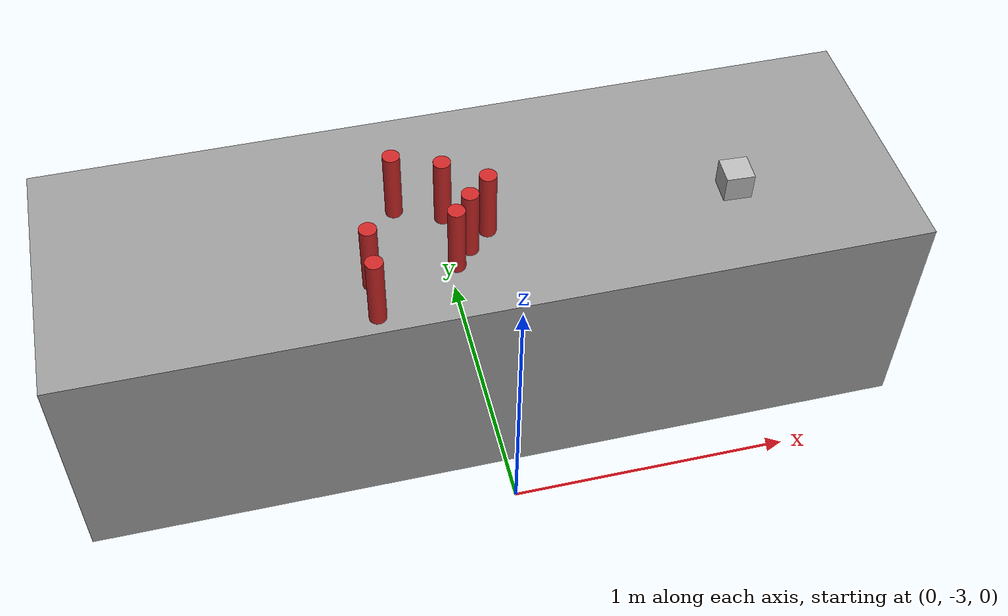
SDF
<sdf version="1.7">
 <world name="default">
  <model name="ground_plane">
   <static>1</static>
   <link name="link_ground_plane">
    <collision name="collision">
     <geometry><plane><normal>0 0 1</normal><size>10 10</size></plane></geometry>
    </collision>
   </link>
  </model>
  <model name="pipette_clone_2">
   <link name="link">
    <inertial>
     <mass>1</mass>
     <inertia><ixx>0.145833</ixx><ixy>0</ixy><ixz>0</ixz><iyy>0.145833</iyy><iyz>0</iyz><izz>0.125</izz></inertia>
    </inertial>
    <visual name="visual">
     <geometry><cylinder><radius>0.0297413</radius><length>0.26554</length></cylinder></geometry>
     <material>
      <script><name>Gazebo/Red</name><uri>file://media/materials/scripts/gazebo.material</uri></script>
      <shader type="pixel"><normal_map>__default__</normal_map></shader>
      <ambient>1 0 0 1</ambient>
      <diffuse>1 0 0 1</diffuse>
      <specular>0.1 0.1 0.1 1</specular>
      <emissive>0 0 0 1</emissive>
     </material>
    </visual>
    <collision name="collision">
     <geometry><cylinder><radius>0.029741</radius><length>0.26554</length></cylinder></geometry>
     <surface>
      <friction>
       <ode><mu>1</mu><mu2>1</mu2><fdir1>0 0 0</fdir1><slip1>0</slip1><slip2>0</slip2></ode>
       <torsional>
        <coefficient>1</coefficient>
        <patch_radius>0</patch_radius>
        <surface_radius>0</surface_radius>
        <use_patch_radius>1</use_patch_radius>
        <ode><slip>0</slip></ode>
       </torsional>
      </friction>
      <bounce><restitution_coefficient>0</restitution_coefficient><threshold>1e+06</threshold></bounce>
      <contact>
       <collide_without_contact>0</collide_without_contact>
       <collide_without_contact_bitmask>1</collide_without_contact_bitmask>
       <collide_bitmask>1</collide_bitmask>
       <ode>
        <soft_cfm>0</soft_cfm>
        <soft_erp>0.2</soft_erp>
        <kp>1e+13</kp>
        <kd>1</kd>
        <max_vel>0.01</max_vel>
        <min_depth>0</min_depth>
       </ode>
       <bullet>
        <split_impulse>1</split_impulse>
        <split_impulse_penetration_threshold>-0.01</split_impulse_penetration_threshold>
        <soft_cfm>0</soft_cfm>
        <soft_erp>0.2</soft_erp>
        <kp>1e+13</kp>
        <kd>1</kd>
       </bullet>
      </contact>
     </surface>
    </collision>
   </link>
   <static>0</static>
   <pose>-0.402533 -2.58547 0.915297 -6e-05 8.7e-05 -3e-05</pose>
  </model>
  <model name="pipette_clone_3">
   <link name="link">
    <inertial>
     <mass>1</mass>
     <inertia><ixx>0.145833</ixx><ixy>0</ixy><ixz>0</ixz><iyy>0.145833</iyy><iyz>0</iyz><izz>0.125</izz></inertia>
    </inertial>
    <visual name="visual">
     <geometry><cylinder><radius>0.0297413</radius><length>0.26554</length></cylinder></geometry>
     <material>
      <script><name>Gazebo/Red</name><uri>file://media/materials/scripts/gazebo.material</uri></script>
      <shader type="pixel"><normal_map>__default__</normal_map></shader>
      <ambient>1 0 0 1</ambient>
      <diffuse>1 0 0 1</diffuse>
      <specular>0.1 0.1 0.1 1</specular>
      <emissive>0 0 0 1</emissive>
     </material>
    </visual>
    <collision name="collision">
     <geometry><cylinder><radius>0.029741</radius><length>0.26554</length></cylinder></geometry>
     <surface>
      <friction>
       <ode><mu>1</mu><mu2>1</mu2><fdir1>0 0 0</fdir1><slip1>0</slip1><slip2>0</slip2></ode>
       <torsional>
        <coefficient>1</coefficient>
        <patch_radius>0</patch_radius>
        <surface_radius>0</surface_radius>
        <use_patch_radius>1</use_patch_radius>
        <ode><slip>0</slip></ode>
       </torsional>
      </friction>
      <bounce><restitution_coefficient>0</restitution_coefficient><threshold>1e+06</threshold></bounce>
      <contact>
       <collide_without_contact>0</collide_without_contact>
       <collide_without_contact_bitmask>1</collide_without_contact_bitmask>
       <collide_bitmask>1</collide_bitmask>
       <ode>
        <soft_cfm>0</soft_cfm>
        <soft_erp>0.2</soft_erp>
        <kp>1e+13</kp>
        <kd>1</kd>
        <max_vel>0.01</max_vel>
        <min_depth>0</min_depth>
       </ode>
       <bullet>
        <split_impulse>1</split_impulse>
        <split_impulse_penetration_threshold>-0.01</split_impulse_penetration_threshold>
        <soft_cfm>0</soft_cfm>
        <soft_erp>0.2</soft_erp>
        <kp>1e+13</kp>
        <kd>1</kd>
       </bullet>
      </contact>
     </surface>
    </collision>
   </link>
   <static>0</static>
   <pose>-0.408695 -2.72846 0.915309 -5.9e-05 9e-05 -3e-05</pose>
  </model>
  <model name="pipette_clone_5">
   <link name="link">
    <inertial>
     <mass>1</mass>
     <inertia><ixx>0.145833</ixx><ixy>0</ixy><ixz>0</ixz><iyy>0.145833</iyy><iyz>0</iyz><izz>0.125</izz></inertia>
    </inertial>
    <visual name="visual">
     <geometry><cylinder><radius>0.0297413</radius><length>0.26554</length></cylinder></geometry>
     <material>
      <script><name>Gazebo/Red</name><uri>file://media/materials/scripts/gazebo.material</uri></script>
      <shader type="pixel"><normal_map>__default__</normal_map></shader>
      <ambient>1 0 0 1</ambient>
      <diffuse>1 0 0 1</diffuse>
      <specular>0.1 0.1 0.1 1</specular>
      <emissive>0 0 0 1</emissive>
     </material>
    </visual>
    <collision name="collision">
     <geometry><cylinder><radius>0.029741</radius><length>0.26554</length></cylinder></geometry>
     <surface>
      <friction>
       <ode><mu>1</mu><mu2>1</mu2><fdir1>0 0 0</fdir1><slip1>0</slip1><slip2>0</slip2></ode>
       <torsional>
        <coefficient>1</coefficient>
        <patch_radius>0</patch_radius>
        <surface_radius>0</surface_radius>
        <use_patch_radius>1</use_patch_radius>
        <ode><slip>0</slip></ode>
       </torsional>
      </friction>
      <bounce><restitution_coefficient>0</restitution_coefficient><threshold>1e+06</threshold></bounce>
      <contact>
       <collide_without_contact>0</collide_without_contact>
       <collide_without_contact_bitmask>1</collide_without_contact_bitmask>
       <collide_bitmask>1</collide_bitmask>
       <ode>
        <soft_cfm>0</soft_cfm>
        <soft_erp>0.2</soft_erp>
        <kp>1e+13</kp>
        <kd>1</kd>
        <max_vel>0.01</max_vel>
        <min_depth>0</min_depth>
       </ode>
       <bullet>
        <split_impulse>1</split_impulse>
        <split_impulse_penetration_threshold>-0.01</split_impulse_penetration_threshold>
        <soft_cfm>0</soft_cfm>
        <soft_erp>0.2</soft_erp>
        <kp>1e+13</kp>
        <kd>1</kd>
       </bullet>
      </contact>
     </surface>
    </collision>
   </link>
   <static>0</static>
   <pose>-0.051805 -2.5069 0.915268 -0.000308 0.000342 -3.1e-05</pose>
  </model>
  <model name="pipette_clone_6">
   <link name="link">
    <inertial>
     <mass>1</mass>
     <inertia><ixx>0.145833</ixx><ixy>0</ixy><ixz>0</ixz><iyy>0.145833</iyy><iyz>0</iyz><izz>0.125</izz></inertia>
    </inertial>
    <visual name="visual">
     <geometry><cylinder><radius>0.0297413</radius><length>0.26554</length></cylinder></geometry>
     <material>
      <script><name>Gazebo/Red</name><uri>file://media/materials/scripts/gazebo.material</uri></script>
      <shader type="pixel"><normal_map>__default__</normal_map></shader>
      <ambient>1 0 0 1</ambient>
      <diffuse>1 0 0 1</diffuse>
      <specular>0.1 0.1 0.1 1</specular>
      <emissive>0 0 0 1</emissive>
     </material>
    </visual>
    <collision name="collision">
     <geometry><cylinder><radius>0.029741</radius><length>0.26554</length></cylinder></geometry>
     <surface>
      <friction>
       <ode><mu>1</mu><mu2>1</mu2><fdir1>0 0 0</fdir1><slip1>0</slip1><slip2>0</slip2></ode>
       <torsional>
        <coefficient>1</coefficient>
        <patch_radius>0</patch_radius>
        <surface_radius>0</surface_radius>
        <use_patch_radius>1</use_patch_radius>
        <ode><slip>0</slip></ode>
       </torsional>
      </friction>
      <bounce><restitution_coefficient>0</restitution_coefficient><threshold>1e+06</threshold></bounce>
      <contact>
       <collide_without_contact>0</collide_without_contact>
       <collide_without_contact_bitmask>1</collide_without_contact_bitmask>
       <collide_bitmask>1</collide_bitmask>
       <ode>
        <soft_cfm>0</soft_cfm>
        <soft_erp>0.2</soft_erp>
        <kp>1e+13</kp>
        <kd>1</kd>
        <max_vel>0.01</max_vel>
        <min_depth>0</min_depth>
       </ode>
       <bullet>
        <split_impulse>1</split_impulse>
        <split_impulse_penetration_threshold>-0.01</split_impulse_penetration_threshold>
        <soft_cfm>0</soft_cfm>
        <soft_erp>0.2</soft_erp>
        <kp>1e+13</kp>
        <kd>1</kd>
       </bullet>
      </contact>
     </surface>
    </collision>
   </link>
   <static>0</static>
   <pose>-0.111287 -2.57041 0.915276 -5.9e-05 8.7e-05 -3e-05</pose>
  </model>
  <model name="pipette_clone_7">
   <link name="link">
    <inertial>
     <mass>1</mass>
     <inertia><ixx>0.145833</ixx><ixy>0</ixy><ixz>0</ixz><iyy>0.145833</iyy><iyz>0</iyz><izz>0.125</izz></inertia>
    </inertial>
    <visual name="visual">
     <geometry><cylinder><radius>0.0297413</radius><length>0.26554</length></cylinder></geometry>
     <material>
      <script><name>Gazebo/Red</name><uri>file://media/materials/scripts/gazebo.material</uri></script>
      <shader type="pixel"><normal_map>__default__</normal_map></shader>
      <ambient>1 0 0 1</ambient>
      <diffuse>1 0 0 1</diffuse>
      <specular>0.1 0.1 0.1 1</specular>
      <emissive>0 0 0 1</emissive>
     </material>
    </visual>
    <collision name="collision">
     <geometry><cylinder><radius>0.029741</radius><length>0.26554</length></cylinder></geometry>
     <surface>
      <friction>
       <ode><mu>1</mu><mu2>1</mu2><fdir1>0 0 0</fdir1><slip1>0</slip1><slip2>0</slip2></ode>
       <torsional>
        <coefficient>1</coefficient>
        <patch_radius>0</patch_radius>
        <surface_radius>0</surface_radius>
        <use_patch_radius>1</use_patch_radius>
        <ode><slip>0</slip></ode>
       </torsional>
      </friction>
      <bounce><restitution_coefficient>0</restitution_coefficient><threshold>1e+06</threshold></bounce>
      <contact>
       <collide_without_contact>0</collide_without_contact>
       <collide_without_contact_bitmask>1</collide_without_contact_bitmask>
       <collide_bitmask>1</collide_bitmask>
       <ode>
        <soft_cfm>0</soft_cfm>
        <soft_erp>0.2</soft_erp>
        <kp>1e+13</kp>
        <kd>1</kd>
        <max_vel>0.01</max_vel>
        <min_depth>0</min_depth>
       </ode>
       <bullet>
        <split_impulse>1</split_impulse>
        <split_impulse_penetration_threshold>-0.01</split_impulse_penetration_threshold>
        <soft_cfm>0</soft_cfm>
        <soft_erp>0.2</soft_erp>
        <kp>1e+13</kp>
        <kd>1</kd>
       </bullet>
      </contact>
     </surface>
    </collision>
   </link>
   <static>0</static>
   <pose>-0.26813 -2.27787 0.915272 -0.000215 0.000235 -3.3e-05</pose>
  </model>
  <model name="pipette_clone_8">
   <link name="link">
    <inertial>
     <mass>1</mass>
     <inertia><ixx>0.145833</ixx><ixy>0</ixy><ixz>0</ixz><iyy>0.145833</iyy><iyz>0</iyz><izz>0.125</izz></inertia>
    </inertial>
    <visual name="visual">
     <geometry><cylinder><radius>0.0297413</radius><length>0.26554</length></cylinder></geometry>
     <material>
      <script><name>Gazebo/Red</name><uri>file://media/materials/scripts/gazebo.material</uri></script>
      <shader type="pixel"><normal_map>__default__</normal_map></shader>
      <ambient>1 0 0 1</ambient>
      <diffuse>1 0 0 1</diffuse>
      <specular>0.1 0.1 0.1 1</specular>
      <emissive>0 0 0 1</emissive>
     </material>
    </visual>
    <collision name="collision">
     <geometry><cylinder><radius>0.029741</radius><length>0.26554</length></cylinder></geometry>
     <surface>
      <friction>
       <ode><mu>1</mu><mu2>1</mu2><fdir1>0 0 0</fdir1><slip1>0</slip1><slip2>0</slip2></ode>
       <torsional>
        <coefficient>1</coefficient>
        <patch_radius>0</patch_radius>
        <surface_radius>0</surface_radius>
        <use_patch_radius>1</use_patch_radius>
        <ode><slip>0</slip></ode>
       </torsional>
      </friction>
      <bounce><restitution_coefficient>0</restitution_coefficient><threshold>1e+06</threshold></bounce>
      <contact>
       <collide_without_contact>0</collide_without_contact>
       <collide_without_contact_bitmask>1</collide_without_contact_bitmask>
       <collide_bitmask>1</collide_bitmask>
       <ode>
        <soft_cfm>0</soft_cfm>
        <soft_erp>0.2</soft_erp>
        <kp>1e+13</kp>
        <kd>1</kd>
        <max_vel>0.01</max_vel>
        <min_depth>0</min_depth>
       </ode>
       <bullet>
        <split_impulse>1</split_impulse>
        <split_impulse_penetration_threshold>-0.01</split_impulse_penetration_threshold>
        <soft_cfm>0</soft_cfm>
        <soft_erp>0.2</soft_erp>
        <kp>1e+13</kp>
        <kd>1</kd>
       </bullet>
      </contact>
     </surface>
    </collision>
   </link>
   <static>0</static>
   <pose>-0.110227 -2.34384 0.915263 -6.3e-05 8.9e-05 -3e-05</pose>
  </model>
  <model name="pipette_clone_10">
   <link name="link">
    <inertial>
     <mass>1</mass>
     <inertia><ixx>0.145833</ixx><ixy>0</ixy><ixz>0</ixz><iyy>0.145833</iyy><iyz>0</iyz><izz>0.125</izz></inertia>
    </inertial>
    <visual name="visual">
     <geometry><cylinder><radius>0.0297413</radius><length>0.26554</length></cylinder></geometry>
     <material>
      <script><name>Gazebo/Red</name><uri>file://media/materials/scripts/gazebo.material</uri></script>
      <shader type="pixel"><normal_map>__default__</normal_map></shader>
      <ambient>1 0 0 1</ambient>
      <diffuse>1 0 0 1</diffuse>
      <specular>0.1 0.1 0.1 1</specular>
      <emissive>0 0 0 1</emissive>
     </material>
    </visual>
    <collision name="collision">
     <geometry><cylinder><radius>0.029741</radius><length>0.26554</length></cylinder></geometry>
     <surface>
      <friction>
       <ode><mu>1</mu><mu2>1</mu2><fdir1>0 0 0</fdir1><slip1>0</slip1><slip2>0</slip2></ode>
       <torsional>
        <coefficient>1</coefficient>
        <patch_radius>0</patch_radius>
        <surface_radius>0</surface_radius>
        <use_patch_radius>1</use_patch_radius>
        <ode><slip>0</slip></ode>
       </torsional>
      </friction>
      <bounce><restitution_coefficient>0</restitution_coefficient><threshold>1e+06</threshold></bounce>
      <contact>
       <collide_without_contact>0</collide_without_contact>
       <collide_without_contact_bitmask>1</collide_without_contact_bitmask>
       <collide_bitmask>1</collide_bitmask>
       <ode>
        <soft_cfm>0</soft_cfm>
        <soft_erp>0.2</soft_erp>
        <kp>1e+13</kp>
        <kd>1</kd>
        <max_vel>0.01</max_vel>
        <min_depth>0</min_depth>
       </ode>
       <bullet>
        <split_impulse>1</split_impulse>
        <split_impulse_penetration_threshold>-0.01</split_impulse_penetration_threshold>
        <soft_cfm>0</soft_cfm>
        <soft_erp>0.2</soft_erp>
        <kp>1e+13</kp>
        <kd>1</kd>
       </bullet>
      </contact>
     </surface>
    </collision>
   </link>
   <static>0</static>
   <pose>0.024634 -2.43727 0.915256 -0.000308 0.000347 -3e-05</pose>
  </model>
  <model name="stage_1">
   <link name="link">
    <inertial>
     <mass>260.037</mass>
     <inertia><ixx>35.3694</ixx><ixy>0</ixy><ixz>0</ixz><iyy>240.548</iyy><iyz>0</iyz><izz>237.704</izz></inertia>
    </inertial>
    <self_collide>1</self_collide>
    <visual name="visual">
     <geometry><box><size>3 0.866292 0.971568</size></box></geometry>
     <material>
      <script><name>Gazebo/Grey</name><uri>file://media/materials/scripts/gazebo.material</uri></script>
      <shader type="pixel"><normal_map>__default__</normal_map></shader>
      <ambient>0 0 0 1</ambient>
      <diffuse>0 0 0 1</diffuse>
      <specular>0.1 0.1 0.1 1</specular>
      <emissive>0 0 0 1</emissive>
     </material>
    </visual>
    <collision name="collision">
     <geometry><box><size>3.82267 0.866292 0.971568</size></box></geometry>
     <surface>
      <friction>
       <ode><mu>1</mu><mu2>1</mu2><fdir1>0 0 0</fdir1><slip1>0</slip1><slip2>0</slip2></ode>
       <torsional>
        <coefficient>1</coefficient>
        <patch_radius>0</patch_radius>
        <surface_radius>0</surface_radius>
        <use_patch_radius>1</use_patch_radius>
        <ode><slip>0</slip></ode>
       </torsional>
      </friction>
      <bounce><restitution_coefficient>0</restitution_coefficient><threshold>1e+06</threshold></bounce>
      <contact>
       <collide_without_contact>0</collide_without_contact>
       <collide_without_contact_bitmask>1</collide_without_contact_bitmask>
       <collide_bitmask>1</collide_bitmask>
       <ode>
        <soft_cfm>0</soft_cfm>
        <soft_erp>0.2</soft_erp>
        <kp>1e+13</kp>
        <kd>1</kd>
        <max_vel>0.01</max_vel>
        <min_depth>0</min_depth>
       </ode>
       <bullet>
        <split_impulse>1</split_impulse>
        <split_impulse_penetration_threshold>-0.01</split_impulse_penetration_threshold>
        <soft_cfm>0</soft_cfm>
        <soft_erp>0.2</soft_erp>
        <kp>1e+13</kp>
        <kd>1</kd>
       </bullet>
      </contact>
     </surface>
    </collision>
   </link>
   <static>0</static>
   <pose>0.006968 -2.30823 0.349335 1.57074 8.7e-05 0.00258</pose>
  </model>
  <model name="rgbd_camera">
   <pose>0.958188 -2.39012 0.781902 -0.002626 0.000788 3.09698</pose>
   <link name="link">
    <pose>0.05 0.05 0.05 0 -0 0</pose>
    <inertial>
     <mass>0.1</mass>
     <inertia>
      <ixx>0.000166667</ixx>
      <iyy>0.000166667</iyy>
      <izz>0.000166667</izz>
      <ixy>0</ixy>
      <ixz>0</ixz>
      <iyz>0</iyz>
     </inertia>
    </inertial>
    <collision name="collision"><geometry><box><size>0.1 0.1 0.1</size></box></geometry></collision>
    <visual name="visual"><geometry><box><size>0.1 0.1 0.1</size></box></geometry></visual>
    <sensor name="rgbd_camera" type="rgbd_camera">
     <camera>
      <horizontal_fov>1.047</horizontal_fov>
      <image><width>320</width><height>240</height></image>
      <clip><near>0.1</near><far>100</far></clip>
     </camera>
     <always_on>1</always_on>
     <update_rate>30</update_rate>
     <visualize>1</visualize>
     <topic>rgbd_camera</topic>
    </sensor>
   </link>
  </model>
 </world>
</sdf>
